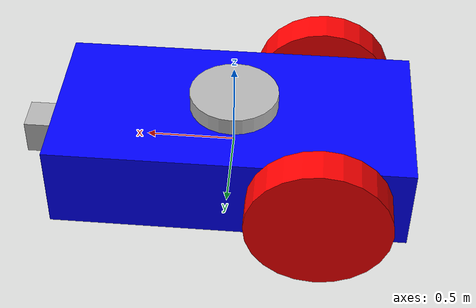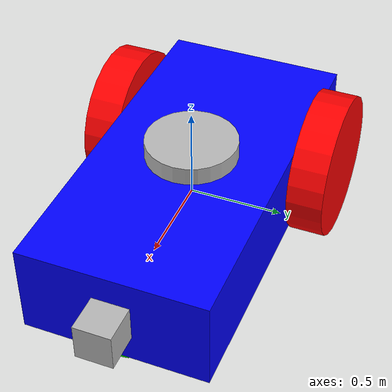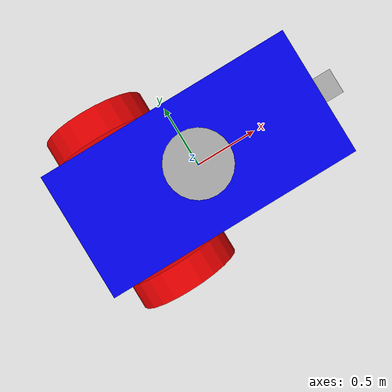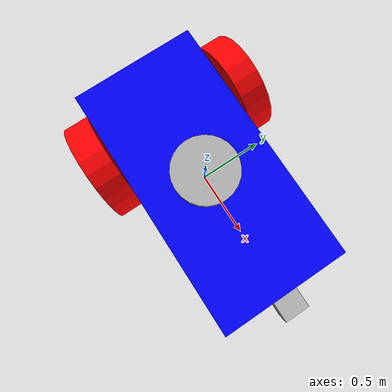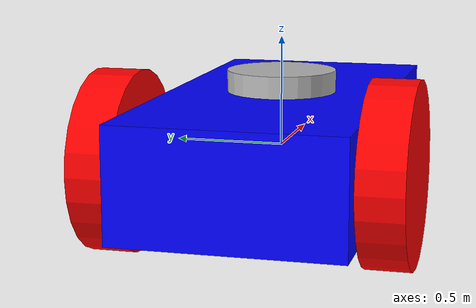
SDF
<sdf version="1.9">
  <model name="rover_base2">
    <link name="chassis">
      <inertial>
        <pose>0.09793796075358809 0 0.02678158054061754 0 0 0</pose>
        <mass>1.40395</mass>
        <inertia>
          <ixx>0.13840811257167279</ixx>
          <ixy>0</ixy>
          <ixz>0.0036824673243349118</ixz>
          <iyy>0.56654664296805435</iyy>
          <iyz>0</iyz>
          <izz>0.62079763039638158</izz>
        </inertia>
      </inertial>
      <collision name="chassis_fixed_joint_lump__collision_collision">
        <pose>0 0 0 0 0 0</pose>
        <geometry>
          <box>
            <size>2 1 0.5</size>
          </box>
        </geometry>
      </collision>
      <collision name="chassis_fixed_joint_lump__camera_link_collision_1">
        <pose>1.1 0 0 0 0 0</pose>
        <geometry>
          <box>
            <size>0.2 0.2 0.2</size>
          </box>
        </geometry>
      </collision>
      <collision name="chassis_fixed_joint_lump__imu_link_collision_2">
        <pose>0 0 0.01 0 0 0</pose>
        <geometry>
          <box>
            <size>0.1 0.1 0.1</size>
          </box>
        </geometry>
      </collision>
      <collision name="chassis_fixed_joint_lump__lidar_link_collision_3">
        <pose>0 0 0.3 0 0 0</pose>
        <geometry>
          <cylinder>
            <length>0.10000000000000001</length>
            <radius>0.25</radius>
          </cylinder>
        </geometry>
      </collision>
      <visual name="chassis_fixed_joint_lump__visual_visual">
        <pose>0 0 0 0 0 0</pose>
        <geometry>
          <box>
            <size>2 1 0.5</size>
          </box>
        </geometry>
        <material>
          <diffuse>0 0 1 1</diffuse>
          <ambient>0 0 1 1</ambient>
        </material>
      </visual>
      <visual name="chassis_fixed_joint_lump__camera_link_visual_1">
        <pose>1.1 0 0 0 0 0</pose>
        <geometry>
          <box>
            <size>0.2 0.2 0.2</size>
          </box>
        </geometry>
      </visual>
      <visual name="chassis_fixed_joint_lump__imu_link_visual_2">
        <pose>0 0 0.01 0 0 0</pose>
        <geometry>
          <box>
            <size>0.1 0.1 0.1</size>
          </box>
        </geometry>
      </visual>
      <visual name="chassis_fixed_joint_lump__lidar_link_visual_3">
        <pose>0 0 0.3 0 0 0</pose>
        <geometry>
          <cylinder>
            <length>0.10000000000000001</length>
            <radius>0.25</radius>
          </cylinder>
        </geometry>
      </visual>
    <sensor name="imu_sensor" type="imu">
      <always_on>1</always_on>
      <update_rate>250</update_rate>
      <topic>imu</topic>
      <visualize>true</visualize>
      <pose>0 0 0 0 0 0</pose>
      <imu>
        <enable_orientation>0</enable_orientation>
        <angular_velocity>
          <x>
            <noise type="gaussian">
              <mean>0</mean>
              <stddev>0.009</stddev>
              <bias_mean>0.00075</bias_mean>
              <bias_stddev>0.005</bias_stddev>
              <dynamic_bias_stddev>0.00002</dynamic_bias_stddev>
              <dynamic_bias_correlation_time>400.0</dynamic_bias_correlation_time>
              <precision>0.00025</precision>
            </noise>
          </x>
          <y>
            <noise type="gaussian">
              <mean>0</mean>
              <stddev>0.009</stddev>
              <bias_mean>0.00075</bias_mean>
              <bias_stddev>0.005</bias_stddev>
              <dynamic_bias_stddev>0.00002</dynamic_bias_stddev>
              <dynamic_bias_correlation_time>400.0</dynamic_bias_correlation_time>
              <precision>0.00025</precision>
            </noise>
          </y>
          <z>
            <noise type="gaussian">
              <mean>0</mean>
              <stddev>0.009</stddev>
              <bias_mean>0.00075</bias_mean>
              <bias_stddev>0.005</bias_stddev>
              <dynamic_bias_stddev>0.00002</dynamic_bias_stddev>
              <dynamic_bias_correlation_time>400.0</dynamic_bias_correlation_time>
              <precision>0.00025</precision>
            </noise>
          </z>
        </angular_velocity>
        <linear_acceleration>
          <x>
            <noise type="gaussian">
              <mean>0</mean>
              <stddev>0.021</stddev>
              <bias_mean>0.05</bias_mean>
              <bias_stddev>0.0075</bias_stddev>
              <dynamic_bias_stddev>0.000375</dynamic_bias_stddev>
              <dynamic_bias_correlation_time>175.0</dynamic_bias_correlation_time>
              <precision>0.005</precision>
            </noise>
          </x>
          <y>
            <noise type="gaussian">
              <mean>0</mean>
              <stddev>0.021</stddev>
              <bias_mean>0.05</bias_mean>
              <bias_stddev>0.0075</bias_stddev>
              <dynamic_bias_stddev>0.000375</dynamic_bias_stddev>
              <dynamic_bias_correlation_time>175.0</dynamic_bias_correlation_time>
              <precision>0.005</precision>
            </noise>
          </y>
          <z>
            <noise type="gaussian">
              <mean>0</mean>
              <stddev>0.021</stddev>
              <bias_mean>0.05</bias_mean>
              <bias_stddev>0.0075</bias_stddev>
              <dynamic_bias_stddev>0.000375</dynamic_bias_stddev>
              <dynamic_bias_correlation_time>175.0</dynamic_bias_correlation_time>
              <precision>0.005</precision>
            </noise>
          </z>
        </linear_acceleration>
      </imu>
    </sensor>

    <sensor name="lidar" type="gpu_lidar">
        <pose>0 0 0.5 0 0 0</pose>
        <update_rate>10</update_rate>
        <topic>gpu_lidar</topic>
        <visualize>true</visualize>
        <lidar>
            <scan>
                <horizontal>

                    <samples>360</samples>
                    <resolution>1</resolution>
                    <min_angle>-3.141592654</min_angle>
                    <max_angle>3.141592654</max_angle>
                </horizontal>

            </scan>
            <range>
                <min>0.2</min>
                <max>10.0</max>
                <resolution>0.01</resolution>
            </range>
            <noise>
                <type>gaussian</type>
                <mean>0</mean>

                <stddev>0.01</stddev>
            </noise>
        </lidar>
        <always_on>false</always_on>
        <visualize>false</visualize>
    </sensor>

    <sensor name="camera_front" type="depth_camera">
     <pose>1.2 0 0 0 0 0</pose>
     <always_on>1</always_on>
     <update_rate>20</update_rate>
     <topic>camera_front</topic>
     <visualize>true</visualize>
     <camera name="camera_front">

         <horizontal_fov>2</horizontal_fov>
         <lens>
             <intrinsics>

               <fx>1108.5</fx>
               <fy>1108.5</fy>

               <cx>640.5</cx>

               <cy>480.5</cy>
               <s>0</s>
             </intrinsics>
         </lens>
         <distortion>
             <k1>0.0</k1>
             <k2>0.0</k2>
             <k3>0.0</k3>
             <p1>0.0</p1>
             <p2>0.0</p2>
             <center>0.5 0.5</center>
         </distortion>
         <image>
             <width>1280</width>
             <height>960</height>
             <format>R8G8B8</format>
         </image>
         <clip>
             <near>0.02</near>
             <far>300</far>
         </clip>
         <noise>
             <type>gaussian</type>
             <mean>0</mean>
             <stddev>0.007</stddev>
         </noise>
         <depth_camera>
             <clip>
                <near>0.2</near>
                <far>10</far>
             </clip>
         </depth_camera>
     </camera>
    </sensor>

  </link>
    <joint name="caster_x" type="revolute">
      <pose relative_to="chassis">0.8 0 -0.2 0 0 0</pose>
      <parent>chassis</parent>
      <child>inter1</child>
      <axis>
        <xyz>1 0 0</xyz>
        <limit>
          <lower>-10000000000000000</lower>
          <upper>10000000000000000</upper>
        </limit>
        <dynamics>
          <spring_reference>0</spring_reference>
          <spring_stiffness>0</spring_stiffness>
        </dynamics>
      </axis>
    </joint>
    <link name="inter1">
      <pose relative_to="caster_x">0 0 0 0 0 0</pose>
      <inertial>
        <pose>0 0 0 0 0 0</pose>
        <mass>0.01</mass>
        <inertia>
          <ixx>9.9999999999999995e-08</ixx>
          <ixy>0</ixy>
          <ixz>0</ixz>
          <iyy>9.9999999999999995e-08</iyy>
          <iyz>0</iyz>
          <izz>9.9999999999999995e-08</izz>
        </inertia>
      </inertial>
    </link>
    <joint name="caster_y" type="revolute">
      <pose relative_to="inter1">0 0 0 0 0 0</pose>
      <parent>inter1</parent>
      <child>inter2</child>
      <axis>
        <xyz>0 1 0</xyz>
        <limit>
          <lower>-10000000000000000</lower>
          <upper>10000000000000000</upper>
        </limit>
        <dynamics>
          <spring_reference>0</spring_reference>
          <spring_stiffness>0</spring_stiffness>
        </dynamics>
      </axis>
    </joint>
    <link name="inter2">
      <pose relative_to="caster_y">0 0 0 0 0 0</pose>
      <inertial>
        <pose>0 0 0 0 0 0</pose>
        <mass>0.01</mass>
        <inertia>
          <ixx>9.9999999999999995e-08</ixx>
          <ixy>0</ixy>
          <ixz>0</ixz>
          <iyy>9.9999999999999995e-08</iyy>
          <iyz>0</iyz>
          <izz>9.9999999999999995e-08</izz>
        </inertia>
      </inertial>
    </link>
    <joint name="caster_z" type="revolute">
      <pose relative_to="inter2">0 0 0 0 0 0</pose>
      <parent>inter2</parent>
      <child>caster</child>
      <axis>
        <xyz>0 0 1</xyz>
        <limit>
          <lower>-10000000000000000</lower>
          <upper>10000000000000000</upper>
        </limit>
        <dynamics>
          <spring_reference>0</spring_reference>
          <spring_stiffness>0</spring_stiffness>
        </dynamics>
      </axis>
    </joint>
    <link name="caster">
      <pose relative_to="caster_z">0 0 0 0 0 0</pose>
      <inertial>
        <pose>0 0 0 0 0 0</pose>
        <mass>1</mass>
        <inertia>
          <ixx>0.10000000000000001</ixx>
          <ixy>0</ixy>
          <ixz>0</ixz>
          <iyy>0.10000000000000001</iyy>
          <iyz>0</iyz>
          <izz>0.10000000000000001</izz>
        </inertia>
      </inertial>
      <collision name="caster_fixed_joint_lump__collision_collision">
        <pose>0 0 0 0 0 0</pose>
        <geometry>
          <sphere>
            <radius>0.20000000000000001</radius>
          </sphere>
        </geometry>
      </collision>
      <visual name="caster_fixed_joint_lump__visual_visual">
        <pose>0 0 0 0 0 0</pose>
        <geometry>
          <sphere>
            <radius>0.20000000000000001</radius>
          </sphere>
        </geometry>
        <material>
          <diffuse>0 1 0 1</diffuse>
          <ambient>0 1 0 1</ambient>
        </material>
      </visual>
    </link>
    <joint name="left_wheel_joint" type="revolute">
      <pose relative_to="chassis">-0.5 0.6 0 -1.570796326794896 0 0</pose>
      <parent>chassis</parent>
      <child>left_wheel</child>
      <axis>
        <xyz>0 0 1</xyz>
        <limit>
          <lower>-10000000000000000</lower>
          <upper>10000000000000000</upper>
        </limit>
        <dynamics>
          <spring_reference>0</spring_reference>
          <spring_stiffness>0</spring_stiffness>
        </dynamics>
      </axis>
    </joint>
    <link name="left_wheel">
      <pose relative_to="left_wheel_joint">0 0 0 0 0 0</pose>
      <inertial>
        <pose>0 0 0 0 0 0</pose>
        <mass>2</mass>
        <inertia>
          <ixx>0.14583299999999999</ixx>
          <ixy>0</ixy>
          <ixz>0</ixz>
          <iyy>0.14583299999999999</iyy>
          <iyz>0</iyz>
          <izz>0.125</izz>
        </inertia>
      </inertial>
      <collision name="left_wheel_fixed_joint_lump__collision_collision">
        <pose>0 0 0 0 0 0</pose>
        <geometry>
          <cylinder>
            <length>0.20000000000000001</length>
            <radius>0.40000000000000002</radius>
          </cylinder>
        </geometry>
      </collision>
      <visual name="left_wheel_visual">
        <pose>0 0 0 0 0 0</pose>
        <geometry>
          <cylinder>
            <length>0.20000000000000001</length>
            <radius>0.40000000000000002</radius>
          </cylinder>
        </geometry>
        <material>
          <diffuse>1 0 0 1</diffuse>
          <ambient>1 0 0 1</ambient>
        </material>
      </visual>
    </link>
    <joint name="right_wheel_joint" type="revolute">
      <pose relative_to="chassis">-0.5 -0.6 0 -1.570796326794896 0 0</pose>
      <parent>chassis</parent>
      <child>right_wheel</child>
      <axis>
        <xyz>0 0 1</xyz>
        <limit>
          <lower>-10000000000000000</lower>
          <upper>10000000000000000</upper>
        </limit>
        <dynamics>
          <spring_reference>0</spring_reference>
          <spring_stiffness>0</spring_stiffness>
        </dynamics>
      </axis>
    </joint>
    <link name="right_wheel">
      <pose relative_to="right_wheel_joint">0 0 0 0 0 0</pose>
      <inertial>
        <pose>0 0 0 0 0 0</pose>
        <mass>2</mass>
        <inertia>
          <ixx>0.14583299999999999</ixx>
          <ixy>0</ixy>
          <ixz>0</ixz>
          <iyy>0.14583299999999999</iyy>
          <iyz>0</iyz>
          <izz>0.125</izz>
        </inertia>
      </inertial>
      <collision name="right_wheel_fixed_joint_lump__collision_collision">
        <pose>0 0 0 0 0 0</pose>
        <geometry>
          <cylinder>
            <length>0.20000000000000001</length>
            <radius>0.40000000000000002</radius>
          </cylinder>
        </geometry>
      </collision>
      <visual name="right_wheel_visual">
        <pose>0 0 0 0 0 0</pose>
        <geometry>
          <cylinder>
            <length>0.20000000000000001</length>
            <radius>0.40000000000000002</radius>
          </cylinder>
        </geometry>
        <material>
          <diffuse>1 0 0 1</diffuse>
          <ambient>1 0 0 1</ambient>
        </material>
      </visual>
    </link>
    <frame name="base_link_to_chassis" attached_to="chassis">
      <pose>0 0 0 0 -0 0</pose>
    </frame>
    <frame name="base_footprint" attached_to="base_link_to_chassis" />
    <frame name="camera_joint" attached_to="chassis">
      <pose>1.1 0 0 0 -0 0</pose>
    </frame>
    <frame name="camera_link" attached_to="camera_joint" />
    <frame name="imu_joint" attached_to="chassis">
      <pose>0 0 0.01 0 -0 0</pose>
    </frame>
    <frame name="imu_link" attached_to="imu_joint" />
    <frame name="lidar_joint" attached_to="chassis">
      <pose>0 0 0.3 0 -0 0</pose>
    </frame>
    <frame name="lidar_link" attached_to="lidar_joint" />
  </model>
</sdf>
